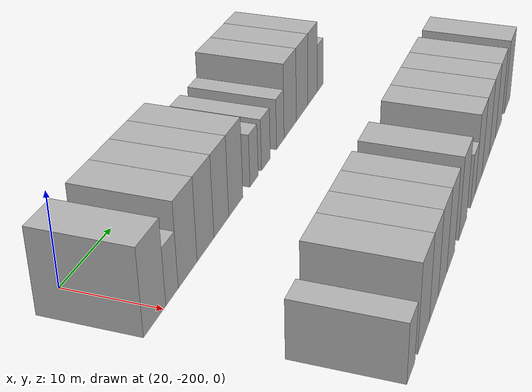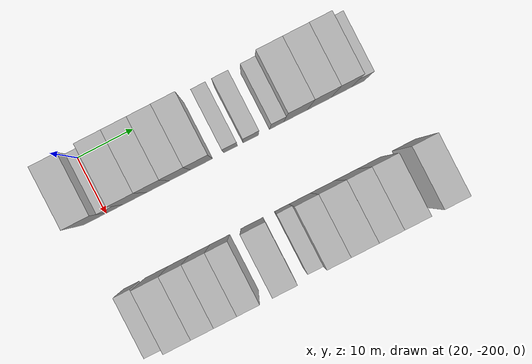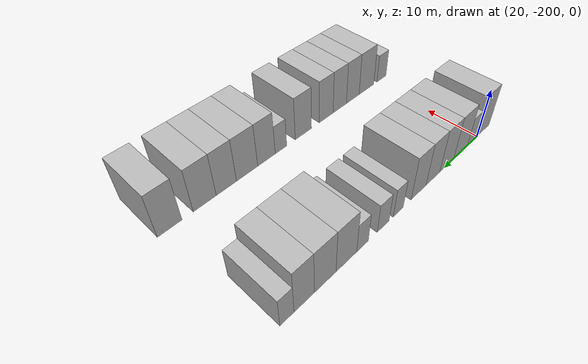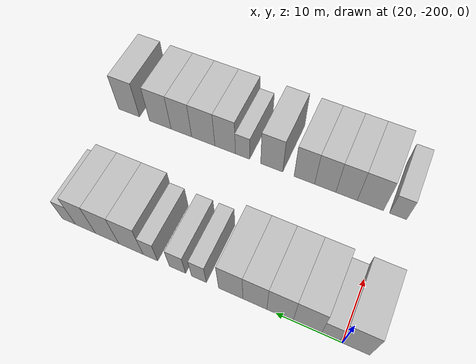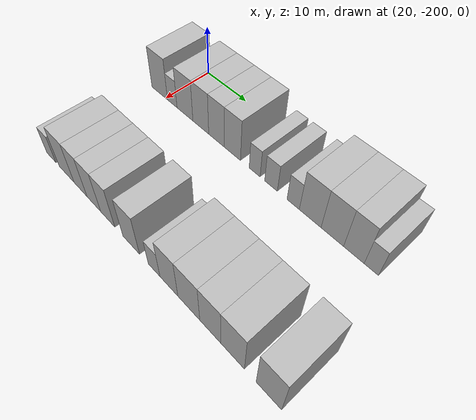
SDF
<sdf version="1.6">
 <world name="default">
  <model name="building_1">
   <static>1</static>
   <pose>25.0000 -201.7638 0 0.000000 0.000000 0.000000</pose>
   <link name="link">
    <pose>0 0 4.50 0 0 0</pose>
    <collision name="collision"><geometry><box><size>10.0000 4.4724 9.0000</size></box></geometry></collision>
    <visual name="visual">
     <cast_shadows>0</cast_shadows>
     <geometry><box><size>10.0000 4.4724 9.0000</size></box></geometry>
     <material>
      <script>
       <uri>model://HANNAS_wall/materials/scripts</uri>
       <uri>model://HANNAS_wall/materials/textures</uri>
       <name>vrc/HANNAS_wall</name>
      </script>
     </material>
    </visual>
   </link>
  </model>
  <model name="building_2">
   <static>1</static>
   <pose>25.0000 -198.2044 0 0.000000 0.000000 0.000000</pose>
   <link name="link">
    <pose>0 0 3.00 0 0 0</pose>
    <collision name="collision"><geometry><box><size>10.0000 2.6465 6.0000</size></box></geometry></collision>
    <visual name="visual">
     <cast_shadows>0</cast_shadows>
     <geometry><box><size>10.0000 2.6465 6.0000</size></box></geometry>
     <material>
      <script>
       <uri>model://HANNAS_wall/materials/scripts</uri>
       <uri>model://HANNAS_wall/materials/textures</uri>
       <name>vrc/HANNAS_wall</name>
      </script>
     </material>
    </visual>
   </link>
  </model>
  <model name="building_3">
   <static>1</static>
   <pose>25.0000 -194.7488 0 0.000000 0.000000 0.000000</pose>
   <link name="link">
    <pose>0 0 4.50 0 0 0</pose>
    <collision name="collision"><geometry><box><size>10.0000 4.2647 9.0000</size></box></geometry></collision>
    <visual name="visual">
     <cast_shadows>0</cast_shadows>
     <geometry><box><size>10.0000 4.2647 9.0000</size></box></geometry>
     <material>
      <script>
       <uri>model://HANNAS_wall/materials/scripts</uri>
       <uri>model://HANNAS_wall/materials/textures</uri>
       <name>vrc/HANNAS_wall</name>
      </script>
     </material>
    </visual>
   </link>
  </model>
  <model name="building_4">
   <static>1</static>
   <pose>25.0000 -190.5852 0 0.000000 0.000000 0.000000</pose>
   <link name="link">
    <pose>0 0 4.50 0 0 0</pose>
    <collision name="collision"><geometry><box><size>10.0000 4.0623 9.0000</size></box></geometry></collision>
    <visual name="visual">
     <cast_shadows>0</cast_shadows>
     <geometry><box><size>10.0000 4.0623 9.0000</size></box></geometry>
     <material>
      <script>
       <uri>model://HANNAS_wall/materials/scripts</uri>
       <uri>model://HANNAS_wall/materials/textures</uri>
       <name>vrc/HANNAS_wall</name>
      </script>
     </material>
    </visual>
   </link>
  </model>
  <model name="building_5">
   <static>1</static>
   <pose>25.0000 -186.6543 0 0.000000 0.000000 0.000000</pose>
   <link name="link">
    <pose>0 0 4.50 0 0 0</pose>
    <collision name="collision"><geometry><box><size>10.0000 3.7996 9.0000</size></box></geometry></collision>
    <visual name="visual">
     <cast_shadows>0</cast_shadows>
     <geometry><box><size>10.0000 3.7996 9.0000</size></box></geometry>
     <material>
      <script>
       <uri>model://HANNAS_wall/materials/scripts</uri>
       <uri>model://HANNAS_wall/materials/textures</uri>
       <name>vrc/HANNAS_wall</name>
      </script>
     </material>
    </visual>
   </link>
  </model>
  <model name="building_6">
   <static>1</static>
   <pose>25.0000 -182.8145 0 0.000000 0.000000 0.000000</pose>
   <link name="link">
    <pose>0 0 4.50 0 0 0</pose>
    <collision name="collision"><geometry><box><size>10.0000 3.8800 9.0000</size></box></geometry></collision>
    <visual name="visual">
     <cast_shadows>0</cast_shadows>
     <geometry><box><size>10.0000 3.8800 9.0000</size></box></geometry>
     <material>
      <script>
       <uri>model://HANNAS_wall/materials/scripts</uri>
       <uri>model://HANNAS_wall/materials/textures</uri>
       <name>vrc/HANNAS_wall</name>
      </script>
     </material>
    </visual>
   </link>
  </model>
  <model name="building_7">
   <static>1</static>
   <pose>25.0000 -177.6527 0 0.000000 0.000000 0.000000</pose>
   <link name="link">
    <pose>0 0 3.00 0 0 0</pose>
    <collision name="collision"><geometry><box><size>10.0000 2.4434 6.0000</size></box></geometry></collision>
    <visual name="visual">
     <cast_shadows>0</cast_shadows>
     <geometry><box><size>10.0000 2.4434 6.0000</size></box></geometry>
     <material>
      <script>
       <uri>model://HANNAS_wall/materials/scripts</uri>
       <uri>model://HANNAS_wall/materials/textures</uri>
       <name>vrc/HANNAS_wall</name>
      </script>
     </material>
    </visual>
   </link>
  </model>
  <model name="building_8">
   <static>1</static>
   <pose>25.0000 -174.0663 0 0.000000 0.000000 0.000000</pose>
   <link name="link">
    <pose>0 0 3.00 0 0 0</pose>
    <collision name="collision"><geometry><box><size>10.0000 2.7294 6.0000</size></box></geometry></collision>
    <visual name="visual">
     <cast_shadows>0</cast_shadows>
     <geometry><box><size>10.0000 2.7294 6.0000</size></box></geometry>
     <material>
      <script>
       <uri>model://HANNAS_wall/materials/scripts</uri>
       <uri>model://HANNAS_wall/materials/textures</uri>
       <name>vrc/HANNAS_wall</name>
      </script>
     </material>
    </visual>
   </link>
  </model>
  <model name="building_9">
   <static>1</static>
   <pose>25.0000 -169.4440 0 0.000000 0.000000 0.000000</pose>
   <link name="link">
    <pose>0 0 3.00 0 0 0</pose>
    <collision name="collision"><geometry><box><size>10.0000 2.5153 6.0000</size></box></geometry></collision>
    <visual name="visual">
     <cast_shadows>0</cast_shadows>
     <geometry><box><size>10.0000 2.5153 6.0000</size></box></geometry>
     <material>
      <script>
       <uri>model://HANNAS_wall/materials/scripts</uri>
       <uri>model://HANNAS_wall/materials/textures</uri>
       <name>vrc/HANNAS_wall</name>
      </script>
     </material>
    </visual>
   </link>
  </model>
  <model name="building_10">
   <static>1</static>
   <pose>25.0000 -166.0645 0 0.000000 0.000000 0.000000</pose>
   <link name="link">
    <pose>0 0 4.50 0 0 0</pose>
    <collision name="collision"><geometry><box><size>10.0000 4.2437 9.0000</size></box></geometry></collision>
    <visual name="visual">
     <cast_shadows>0</cast_shadows>
     <geometry><box><size>10.0000 4.2437 9.0000</size></box></geometry>
     <material>
      <script>
       <uri>model://HANNAS_wall/materials/scripts</uri>
       <uri>model://HANNAS_wall/materials/textures</uri>
       <name>vrc/HANNAS_wall</name>
      </script>
     </material>
    </visual>
   </link>
  </model>
  <model name="building_11">
   <static>1</static>
   <pose>25.0000 -161.8498 0 0.000000 0.000000 0.000000</pose>
   <link name="link">
    <pose>0 0 4.50 0 0 0</pose>
    <collision name="collision"><geometry><box><size>10.0000 4.1857 9.0000</size></box></geometry></collision>
    <visual name="visual">
     <cast_shadows>0</cast_shadows>
     <geometry><box><size>10.0000 4.1857 9.0000</size></box></geometry>
     <material>
      <script>
       <uri>model://HANNAS_wall/materials/scripts</uri>
       <uri>model://HANNAS_wall/materials/textures</uri>
       <name>vrc/HANNAS_wall</name>
      </script>
     </material>
    </visual>
   </link>
  </model>
  <model name="building_12">
   <static>1</static>
   <pose>25.0000 -157.9383 0 0.000000 0.000000 0.000000</pose>
   <link name="link">
    <pose>0 0 4.50 0 0 0</pose>
    <collision name="collision"><geometry><box><size>10.0000 3.6374 9.0000</size></box></geometry></collision>
    <visual name="visual">
     <cast_shadows>0</cast_shadows>
     <geometry><box><size>10.0000 3.6374 9.0000</size></box></geometry>
     <material>
      <script>
       <uri>model://HANNAS_wall/materials/scripts</uri>
       <uri>model://HANNAS_wall/materials/textures</uri>
       <name>vrc/HANNAS_wall</name>
      </script>
     </material>
    </visual>
   </link>
  </model>
  <model name="building_13">
   <static>1</static>
   <pose>25.0000 -154.9052 0 0.000000 0.000000 0.000000</pose>
   <link name="link">
    <pose>0 0 3.00 0 0 0</pose>
    <collision name="collision"><geometry><box><size>10.0000 2.4287 6.0000</size></box></geometry></collision>
    <visual name="visual">
     <cast_shadows>0</cast_shadows>
     <geometry><box><size>10.0000 2.4287 6.0000</size></box></geometry>
     <material>
      <script>
       <uri>model://HANNAS_wall/materials/scripts</uri>
       <uri>model://HANNAS_wall/materials/textures</uri>
       <name>vrc/HANNAS_wall</name>
      </script>
     </material>
    </visual>
   </link>
  </model>
  <model name="building_104">
   <static>1</static>
   <pose>47.0000 -201.6060 0 0.000000 0.000000 0.000000</pose>
   <link name="link">
    <pose>0 0 3.00 0 0 0</pose>
    <collision name="collision"><geometry><box><size>10.0000 2.7880 6.0000</size></box></geometry></collision>
    <visual name="visual">
     <cast_shadows>0</cast_shadows>
     <geometry><box><size>10.0000 2.7880 6.0000</size></box></geometry>
     <material>
      <script>
       <uri>model://HANNAS_wall/materials/scripts</uri>
       <uri>model://HANNAS_wall/materials/textures</uri>
       <name>vrc/HANNAS_wall</name>
      </script>
     </material>
    </visual>
   </link>
  </model>
  <model name="building_105">
   <static>1</static>
   <pose>47.0000 -197.0332 0 0.000000 0.000000 0.000000</pose>
   <link name="link">
    <pose>0 0 4.50 0 0 0</pose>
    <collision name="collision"><geometry><box><size>10.0000 4.3576 9.0000</size></box></geometry></collision>
    <visual name="visual">
     <cast_shadows>0</cast_shadows>
     <geometry><box><size>10.0000 4.3576 9.0000</size></box></geometry>
     <material>
      <script>
       <uri>model://HANNAS_wall/materials/scripts</uri>
       <uri>model://HANNAS_wall/materials/textures</uri>
       <name>vrc/HANNAS_wall</name>
      </script>
     </material>
    </visual>
   </link>
  </model>
  <model name="building_106">
   <static>1</static>
   <pose>47.0000 -193.0505 0 0.000000 0.000000 0.000000</pose>
   <link name="link">
    <pose>0 0 4.50 0 0 0</pose>
    <collision name="collision"><geometry><box><size>10.0000 3.6078 9.0000</size></box></geometry></collision>
    <visual name="visual">
     <cast_shadows>0</cast_shadows>
     <geometry><box><size>10.0000 3.6078 9.0000</size></box></geometry>
     <material>
      <script>
       <uri>model://HANNAS_wall/materials/scripts</uri>
       <uri>model://HANNAS_wall/materials/textures</uri>
       <name>vrc/HANNAS_wall</name>
      </script>
     </material>
    </visual>
   </link>
  </model>
  <model name="building_107">
   <static>1</static>
   <pose>47.0000 -189.4188 0 0.000000 0.000000 0.000000</pose>
   <link name="link">
    <pose>0 0 4.50 0 0 0</pose>
    <collision name="collision"><geometry><box><size>10.0000 3.6557 9.0000</size></box></geometry></collision>
    <visual name="visual">
     <cast_shadows>0</cast_shadows>
     <geometry><box><size>10.0000 3.6557 9.0000</size></box></geometry>
     <material>
      <script>
       <uri>model://HANNAS_wall/materials/scripts</uri>
       <uri>model://HANNAS_wall/materials/textures</uri>
       <name>vrc/HANNAS_wall</name>
      </script>
     </material>
    </visual>
   </link>
  </model>
  <model name="building_108">
   <static>1</static>
   <pose>47.0000 -185.7896 0 0.000000 0.000000 0.000000</pose>
   <link name="link">
    <pose>0 0 4.50 0 0 0</pose>
    <collision name="collision"><geometry><box><size>10.0000 3.6027 9.0000</size></box></geometry></collision>
    <visual name="visual">
     <cast_shadows>0</cast_shadows>
     <geometry><box><size>10.0000 3.6027 9.0000</size></box></geometry>
     <material>
      <script>
       <uri>model://HANNAS_wall/materials/scripts</uri>
       <uri>model://HANNAS_wall/materials/textures</uri>
       <name>vrc/HANNAS_wall</name>
      </script>
     </material>
    </visual>
   </link>
  </model>
  <model name="building_109">
   <static>1</static>
   <pose>47.0000 -180.0034 0 0.000000 0.000000 0.000000</pose>
   <link name="link">
    <pose>0 0 4.50 0 0 0</pose>
    <collision name="collision"><geometry><box><size>10.0000 3.9696 9.0000</size></box></geometry></collision>
    <visual name="visual">
     <cast_shadows>0</cast_shadows>
     <geometry><box><size>10.0000 3.9696 9.0000</size></box></geometry>
     <material>
      <script>
       <uri>model://HANNAS_wall/materials/scripts</uri>
       <uri>model://HANNAS_wall/materials/textures</uri>
       <name>vrc/HANNAS_wall</name>
      </script>
     </material>
    </visual>
   </link>
  </model>
  <model name="building_110">
   <static>1</static>
   <pose>47.0000 -174.7080 0 0.000000 0.000000 0.000000</pose>
   <link name="link">
    <pose>0 0 3.00 0 0 0</pose>
    <collision name="collision"><geometry><box><size>10.0000 2.6212 6.0000</size></box></geometry></collision>
    <visual name="visual">
     <cast_shadows>0</cast_shadows>
     <geometry><box><size>10.0000 2.6212 6.0000</size></box></geometry>
     <material>
      <script>
       <uri>model://HANNAS_wall/materials/scripts</uri>
       <uri>model://HANNAS_wall/materials/textures</uri>
       <name>vrc/HANNAS_wall</name>
      </script>
     </material>
    </visual>
   </link>
  </model>
  <model name="building_111">
   <static>1</static>
   <pose>47.0000 -171.4798 0 0.000000 0.000000 0.000000</pose>
   <link name="link">
    <pose>0 0 4.50 0 0 0</pose>
    <collision name="collision"><geometry><box><size>10.0000 3.8352 9.0000</size></box></geometry></collision>
    <visual name="visual">
     <cast_shadows>0</cast_shadows>
     <geometry><box><size>10.0000 3.8352 9.0000</size></box></geometry>
     <material>
      <script>
       <uri>model://HANNAS_wall/materials/scripts</uri>
       <uri>model://HANNAS_wall/materials/textures</uri>
       <name>vrc/HANNAS_wall</name>
      </script>
     </material>
    </visual>
   </link>
  </model>
  <model name="building_112">
   <static>1</static>
   <pose>47.0000 -167.3536 0 0.000000 0.000000 0.000000</pose>
   <link name="link">
    <pose>0 0 4.50 0 0 0</pose>
    <collision name="collision"><geometry><box><size>10.0000 4.4173 9.0000</size></box></geometry></collision>
    <visual name="visual">
     <cast_shadows>0</cast_shadows>
     <geometry><box><size>10.0000 4.4173 9.0000</size></box></geometry>
     <material>
      <script>
       <uri>model://HANNAS_wall/materials/scripts</uri>
       <uri>model://HANNAS_wall/materials/textures</uri>
       <name>vrc/HANNAS_wall</name>
      </script>
     </material>
    </visual>
   </link>
  </model>
  <model name="building_113">
   <static>1</static>
   <pose>47.0000 -163.1488 0 0.000000 0.000000 0.000000</pose>
   <link name="link">
    <pose>0 0 4.50 0 0 0</pose>
    <collision name="collision"><geometry><box><size>10.0000 3.9922 9.0000</size></box></geometry></collision>
    <visual name="visual">
     <cast_shadows>0</cast_shadows>
     <geometry><box><size>10.0000 3.9922 9.0000</size></box></geometry>
     <material>
      <script>
       <uri>model://HANNAS_wall/materials/scripts</uri>
       <uri>model://HANNAS_wall/materials/textures</uri>
       <name>vrc/HANNAS_wall</name>
      </script>
     </material>
    </visual>
   </link>
  </model>
  <model name="building_114">
   <static>1</static>
   <pose>47.0000 -159.0207 0 0.000000 0.000000 0.000000</pose>
   <link name="link">
    <pose>0 0 4.50 0 0 0</pose>
    <collision name="collision"><geometry><box><size>10.0000 4.2641 9.0000</size></box></geometry></collision>
    <visual name="visual">
     <cast_shadows>0</cast_shadows>
     <geometry><box><size>10.0000 4.2641 9.0000</size></box></geometry>
     <material>
      <script>
       <uri>model://HANNAS_wall/materials/scripts</uri>
       <uri>model://HANNAS_wall/materials/textures</uri>
       <name>vrc/HANNAS_wall</name>
      </script>
     </material>
    </visual>
   </link>
  </model>
  <model name="building_115">
   <static>1</static>
   <pose>47.0000 -152.7908 0 0.000000 0.000000 0.000000</pose>
   <link name="link">
    <pose>0 0 4.50 0 0 0</pose>
    <collision name="collision"><geometry><box><size>10.0000 4.1956 9.0000</size></box></geometry></collision>
    <visual name="visual">
     <cast_shadows>0</cast_shadows>
     <geometry><box><size>10.0000 4.1956 9.0000</size></box></geometry>
     <material>
      <script>
       <uri>model://HANNAS_wall/materials/scripts</uri>
       <uri>model://HANNAS_wall/materials/textures</uri>
       <name>vrc/HANNAS_wall</name>
      </script>
     </material>
    </visual>
   </link>
  </model>
 </world>
</sdf>
